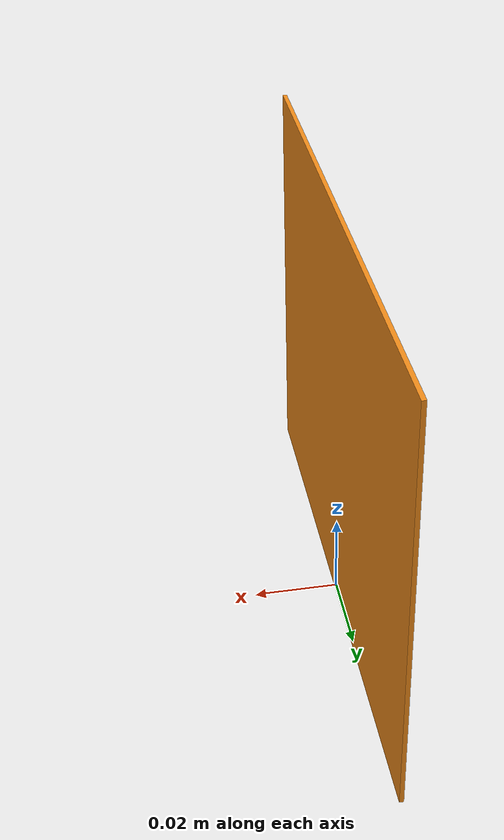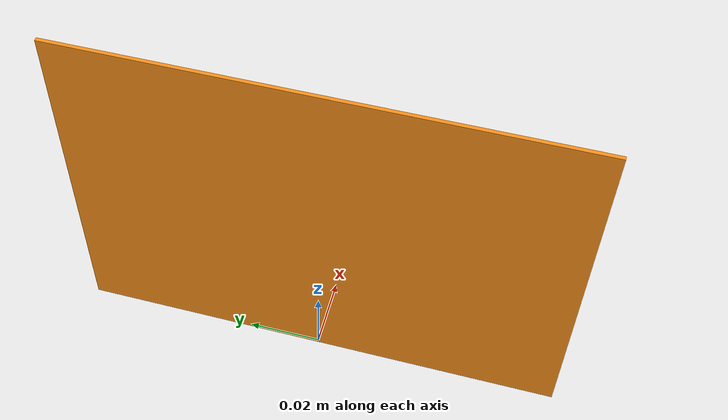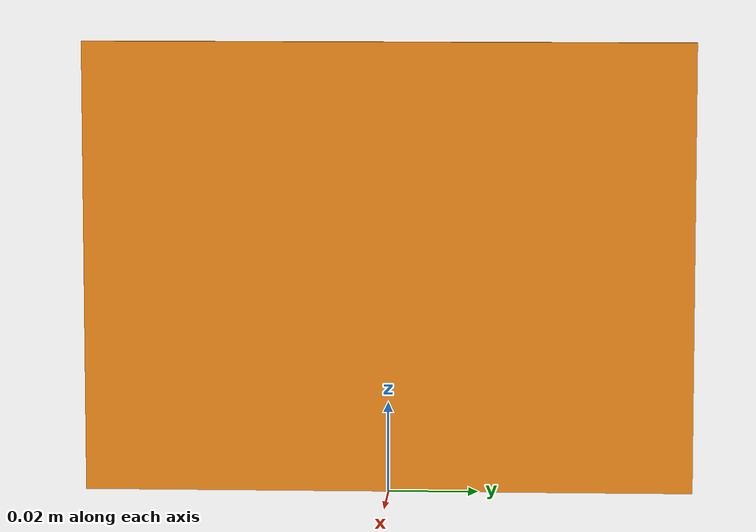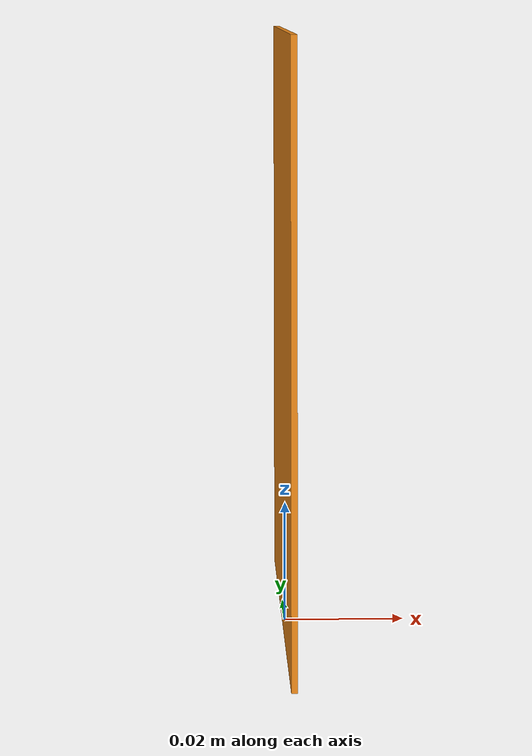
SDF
<?xml version="1.0" ?>
<sdf version="1.5">
    <model name='dog_orange'>
        <static>1</static>
        <link name='link'>
            <collision name='collision'>
            <geometry>
                <box>
                <size>0.001 0.135 0.1</size>
                </box>
            </geometry>
            </collision>
            <visual name='visual'>
            <geometry>
                <box>
                <size>0.001 0.135 0.1</size>
                </box>
            </geometry>
            <material>
                <script>
                    <uri>model://dog_orange/materials/scripts</uri>
                    <uri>model://dog_orange/materials/textures</uri>
                    <name>OrangeDogImage</name>
                </script>
            </material>
            </visual>
        </link>
        <pose frame=''>0 0 0.05 0 0 0 1</pose>
    </model>
</sdf>
